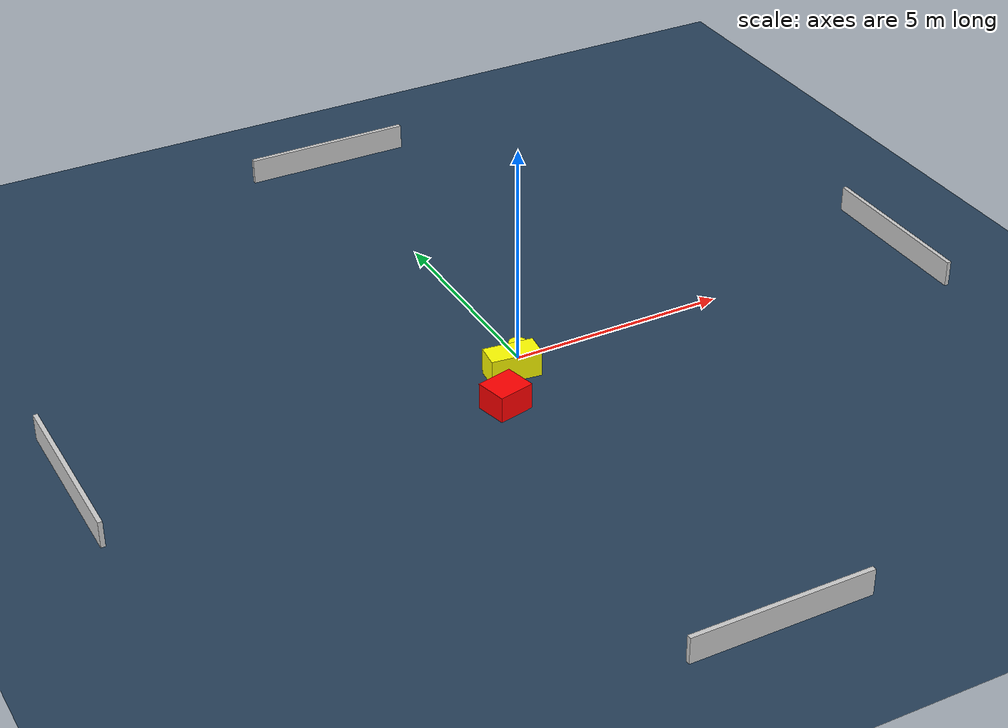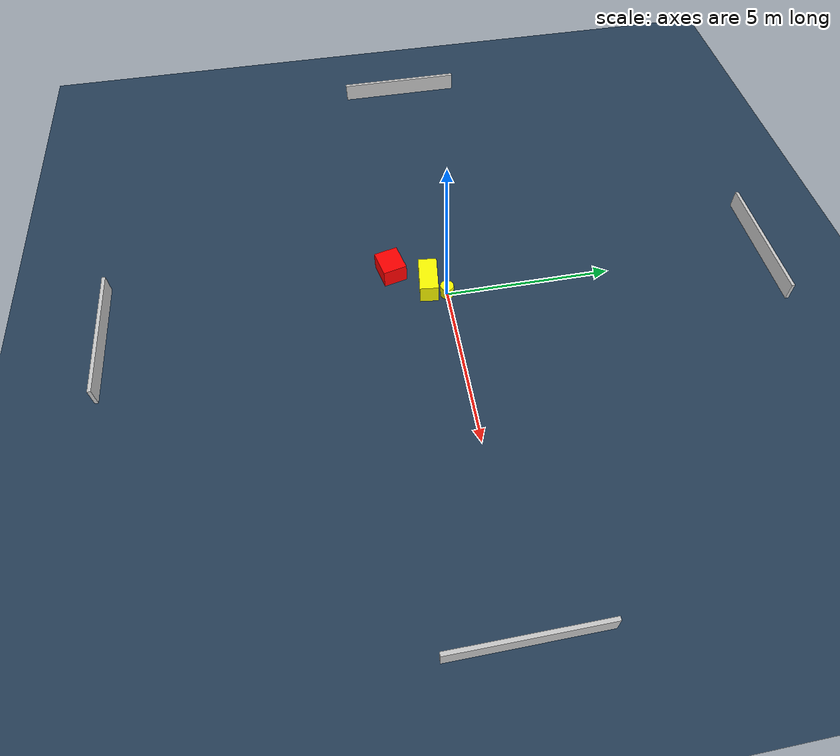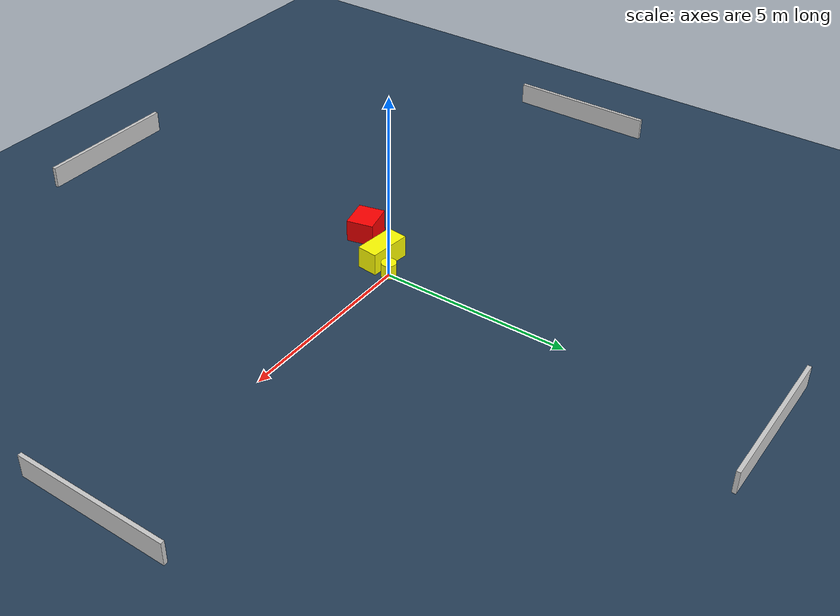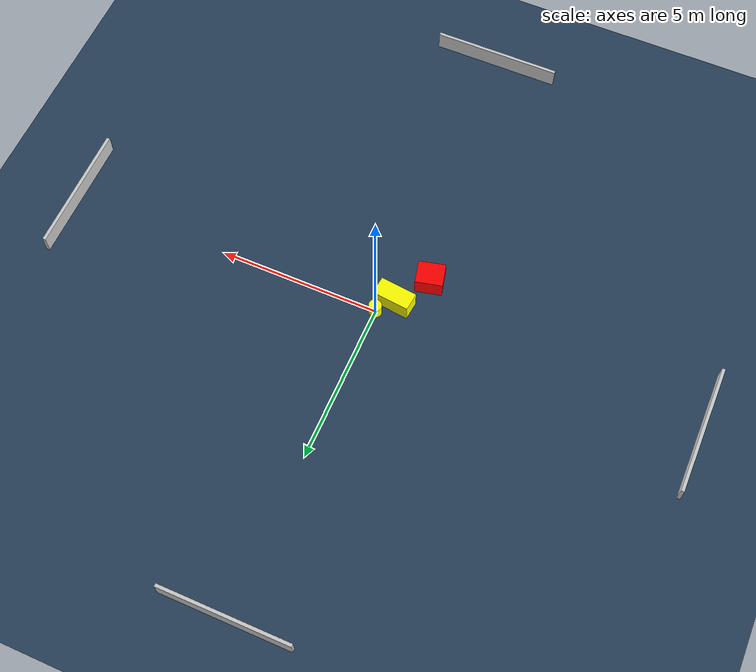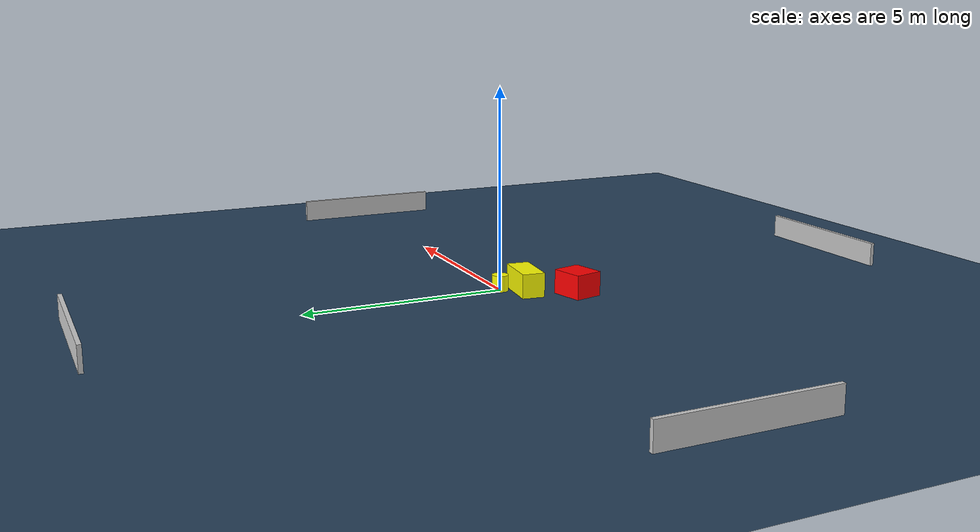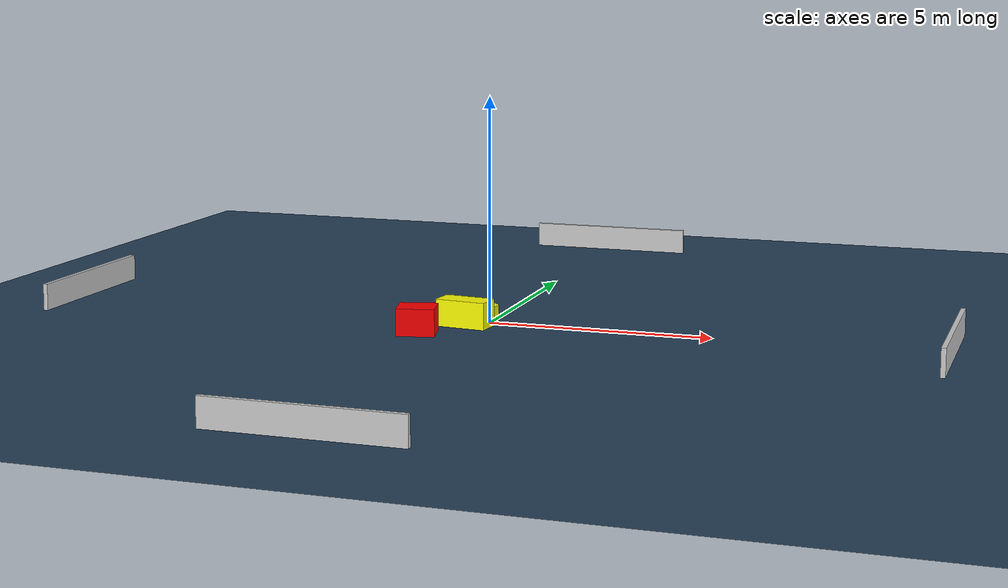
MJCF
<?xml version="1.0" ?>
<mujoco model="generated_environment">
  <option timestep="0.01" integrator="RK4" cone="elliptic"/>
  <default>
    <geom density="1"/>
  </default>
  <asset>
    <texture builtin="gradient" height="3072" name="skybox" rgb1="0.3 0.5 0.7" rgb2="0 0 0" type="skybox" width="512"/>
    <texture builtin="checker" height="300" name="groundplane" rgb1="0.2 0.3 0.4" rgb2="0.1 0.2 0.3" type="2d" width="300"/>
    <material name="groundplane" reflectance="0.2" texrepeat="5 5" texture="groundplane"/>
  </asset>
  <worldbody>
    <light dir="0 0 -1" directional="true" pos="0 0 1.5"/>
    <geom condim="3" friction="0.5 0.005 0.001" material="groundplane" name="floor" pos="0 0 0" size="0 0 0.05" type="plane"/>
    <body name="walls">
      <geom name="wall_1" condim="4" pos="-10.0 0.0 0.3" rgba="0.800000011920929 0.800000011920929 0.800000011920929 1.0" size="0.05 2.0 0.3" type="box"/>
      <geom name="wall_2" condim="4" pos="10.0 0.0 0.3" rgba="0.800000011920929 0.800000011920929 0.800000011920929 1.0" size="0.05 2.0 0.3" type="box"/>
      <geom name="wall_3" condim="4" pos="0.0 -10.0 0.3" rgba="0.800000011920929 0.800000011920929 0.800000011920929 1.0" size="2.0 0.05 0.3" type="box"/>
      <geom name="wall_4" condim="4" pos="0.0 10.0 0.3" rgba="0.800000011920929 0.800000011920929 0.800000011920929 1.0" size="2.0 0.05 0.3" type="box"/>
    </body>
    <body name="robot">
      <joint name="joint_x" type="slide" pos="0 0 0" axis="1 0 0"/>
      <joint name="joint_y" type="slide" pos="0 0 0" axis="0 1 0"/>
      <geom name="robot" type="cylinder" pos="0.0 0.0 0.2" size="0.2 0.2 0.0" mass="5.0" friction="1.0 0.005 0.0001" condim="4" rgba="1.0 1.0 0.0 1.0"/>
    </body>
    <body name="obstacle_1_movable">
      <geom name="obstacle_1_movable" condim="4" pos="-0.4021165176141489 -0.49675913284078044 0.3" euler="0 0 83.61880152767307" friction="0.0 0.005 0.001" rgba="1.0 1.0 0.0 1.0" size="0.27851629392710797 0.5740391472175487 0.3" type="box" mass="0.1"/>
      <joint type="free"/>
    </body>
    <body name="obstacle_2_static">
      <geom name="obstacle_2_static" condim="4" pos="-1.1205565995858968 -1.5424118807315959 0.3" euler="0 0 193.30322573896393" friction="0.0 0.005 0.001" rgba="1.0 0.0 0.0 1.0" size="0.4162579605501274 0.3612713188816803 0.3" type="box"/>
    </body>
  </worldbody>
  <actuator>
    <motor name="actuator_x" joint="joint_x" gear="1" ctrlrange="-1 1"/>
    <motor name="actuator_y" joint="joint_y" gear="1" ctrlrange="-1 1"/>
  </actuator>
</mujoco>
